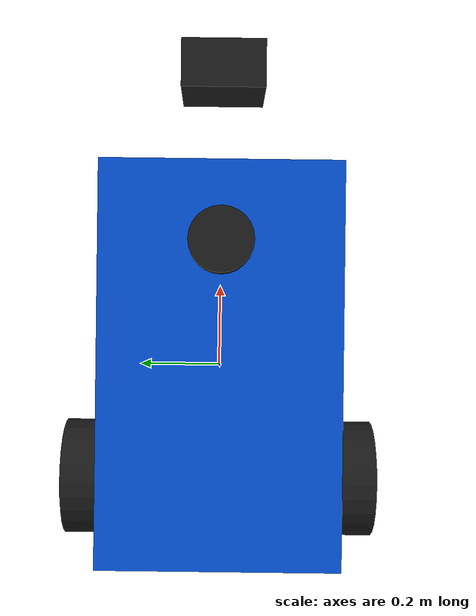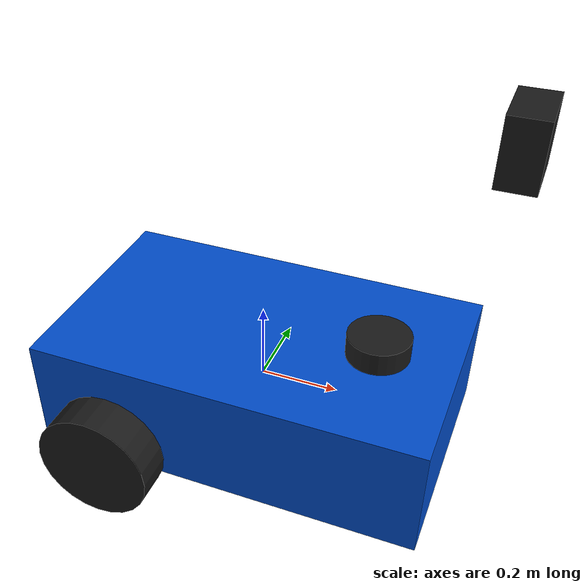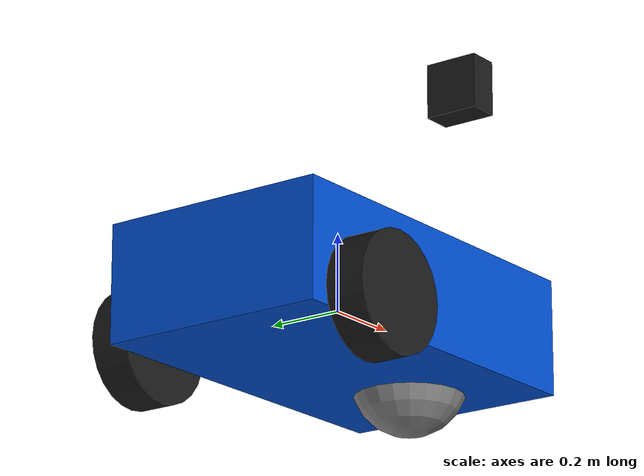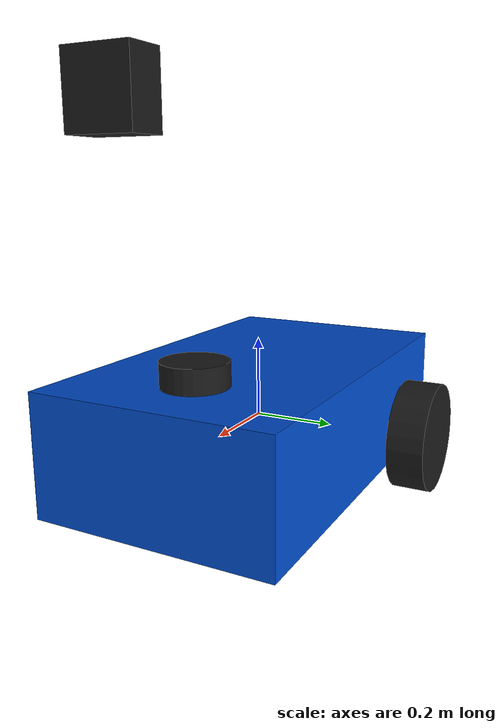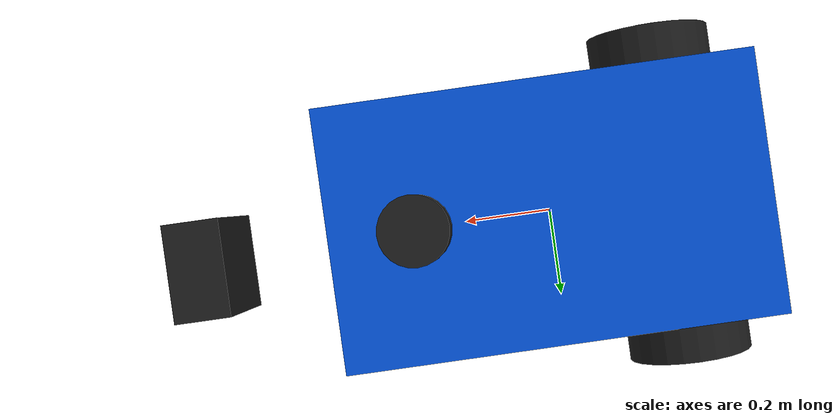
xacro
<?xml version="1.0"?>
<robot name="differential_drive_robot" xmlns:xacro="http://www.ros.org/wiki/xacro">

  <xacro:property name="body_link_x_dim" value="1"/>
  <xacro:property name="body_link_y_dim" value="0.6"/>
  <xacro:property name="body_link_z_dim" value="0.3"/>

  <xacro:property name="wheel_link_radius" value="0.15"/>
  <xacro:property name="wheel_link_length" value="0.1"/>
  <xacro:property name="wheel_link_z_location" value="-0.1"/>

  <xacro:property name="caster_link_radius" value="0.15"/>
  <xacro:property name="caster_link_z_location" value="-0.1"/>

  <xacro:property name="lidar_radius" value="0.08"/>
  <xacro:property name="lidar_length" value="0.06"/>

  <xacro:property name="camera_length" value="0.15"/>

  <xacro:property name="body_density" value="2710.0"/>
  <xacro:property name="wheel_density" value="2710.0"/>
  <xacro:property name="caster_density" value="2710.0"/>

  <xacro:property name="pi_const" value="3.14159265"/>

  <xacro:property name="body_mass" value="${body_density * body_link_x_dim * body_link_y_dim * body_link_z_dim}"/>
  <xacro:property name="wheel_mass" value="${wheel_density * pi_const * wheel_link_radius * wheel_link_radius * wheel_link_length}"/>
  <xacro:property name="caster_mass" value="${caster_density * (4.0/3.0) * pi_const * caster_link_radius * caster_link_radius * caster_link_radius}"/>

  <xacro:property name="Iz_wheel" value="${0.5*wheel_mass*wheel_link_radius*wheel_link_radius}" />
  <xacro:property name="I_wheel" value="${(1.0/12.0)*wheel_mass*(3.0*wheel_link_radius*wheel_link_radius+wheel_link_length*wheel_link_length)}" />
  <xacro:property name="I_caster" value="${(2.0/5.0)*caster_mass*caster_link_radius*caster_link_radius}" />

  <xacro:macro name="inertia_wheel">
    <inertial>
      <origin rpy="0 0 0" xyz="0 0 0"/>
      <mass value="${wheel_mass}"/>
      <inertia ixx="${I_wheel}" ixy="0.0" ixz="0.0" iyy="${I_wheel}" iyz="0" izz="${Iz_wheel}" />
    </inertial>
  </xacro:macro>

  <xacro:macro name="inertia_caster">
    <inertial>
      <origin rpy="0 0 0" xyz="0 0 0"/>
      <mass value="${caster_mass}"/>
      <inertia ixx="${I_caster}" ixy="0.0" ixz="0.0" iyy="${I_caster}" iyz="0.0" izz="${I_caster}" />
    </inertial>
  </xacro:macro>

  <link name="base_footprint"/>

  <joint name="base_footprint_joint" type="fixed">
    <parent link="base_footprint"/>
    <child link="base_link"/>
    <origin xyz="0 0 0" rpy="0 0 0"/>
  </joint>

  <link name="base_link"></link>

  <joint name="base_joint" type="fixed">
    <parent link="base_link"/>
    <child link="body_link"/>
    <origin xyz="0 0 0" rpy="0 0 0"/>
  </joint>

  <link name="body_link">
    <visual>
      <geometry>
        <box size="${body_link_x_dim} ${body_link_y_dim} ${body_link_z_dim}" />
      </geometry>
      <origin rpy="0 0 0" xyz="0 0 0"/>
      <material name="blue">
        <color rgba="0.0 0.3 0.8 1.0"/>
      </material>
    </visual>
    <collision>
      <geometry>
        <box size="${body_link_x_dim} ${body_link_y_dim} ${body_link_z_dim}" />
      </geometry>
      <origin rpy="0 0 0" xyz="0 0 0"/>
    </collision>
    <inertial>
      <origin rpy="0 0 0" xyz="0 0 0"/>
      <mass value="${body_mass}"/>
      <inertia
        ixx="${(1/12)*body_mass*(body_link_y_dim*body_link_y_dim+body_link_z_dim*body_link_z_dim)}" ixy="0" ixz="0"
        iyy="${(1/12)*body_mass*(body_link_x_dim*body_link_x_dim+body_link_z_dim*body_link_z_dim)}" iyz="0"
        izz="${(1/12)*body_mass*(body_link_y_dim*body_link_y_dim+body_link_x_dim*body_link_x_dim)}" />
    </inertial>
  </link>

  <joint name="wheel1_joint" type="continuous">
    <parent link="body_link"/>
    <child link="wheel1_link"/>
    <origin xyz="${-2*wheel_link_radius} ${-body_link_y_dim/2-wheel_link_length/2} ${wheel_link_z_location}" rpy="0 0 0"/>
    <axis xyz="0 1 0"/>
    <limit effort="1000" velocity="1000"/>
    <dynamics damping="1.0" friction="1.0"/>
  </joint>

  <link name="wheel1_link">
    <visual>
      <origin rpy="1.570795 0 0" xyz="0 0 0"/>
      <geometry>
        <cylinder length="${wheel_link_length}" radius="${wheel_link_radius}"/>
      </geometry>
      <material name="black">
        <color rgba="0.1 0.1 0.1 1.0"/>
      </material>
    </visual>
    <collision>
      <origin rpy="1.570795 0 0" xyz="0 0 0"/>
      <geometry>
        <cylinder length="${wheel_link_length}" radius="${wheel_link_radius}"/>
      </geometry>
    </collision>
    <xacro:inertia_wheel />
  </link>

  <joint name="wheel2_joint" type="continuous">
    <parent link="body_link"/>
    <child link="wheel2_link"/>
    <origin xyz="${-2*wheel_link_radius} ${body_link_y_dim/2+wheel_link_length/2} ${wheel_link_z_location}" rpy="0 0 0"/>
    <axis xyz="0 1 0"/>
    <limit effort="1000" velocity="1000"/>
    <dynamics damping="1.0" friction="1.0"/>
  </joint>

  <link name="wheel2_link">
    <visual>
      <origin rpy="1.570795 0 0" xyz="0 0 0"/>
      <geometry>
        <cylinder length="${wheel_link_length}" radius="${wheel_link_radius}"/>
      </geometry>
      <material name="black">
        <color rgba="0.1 0.1 0.1 1.0"/>
      </material>
    </visual>
    <collision>
      <origin rpy="1.570795 0 0" xyz="0 0 0"/>
      <geometry>
        <cylinder length="${wheel_link_length}" radius="${wheel_link_radius}"/>
      </geometry>
    </collision>
    <xacro:inertia_wheel />
  </link>

  <joint name="caster_joint" type="fixed">
    <parent link="body_link"/>
    <child link="caster_link"/>
    <origin xyz="${2*caster_link_radius} 0 ${caster_link_z_location}" rpy="0 0 0"/>
  </joint>

  <link name="caster_link">
    <visual>
      <origin rpy="0 0 0" xyz="0 0 0"/>
      <geometry>
        <sphere radius="${caster_link_radius}" />
      </geometry>
      <material name="grey">
        <color rgba="0.5 0.5 0.5 1.0"/>
      </material>
    </visual>
    <collision>
      <origin rpy="0 0 0" xyz="0 0 0"/>
      <geometry>
        <sphere radius="${caster_link_radius}" />
      </geometry>
    </collision>
    <xacro:inertia_caster />
  </link>

  <joint name="camera_joint" type="fixed">
    <parent link="body_link"/>
    <child link="camera_link"/>
    <origin xyz="${camera_length/3.5 + body_link_x_dim/2 } 0 0.75" rpy="0 0 0"/>
  </joint>

  <link name="camera_link">
    <visual>
      <geometry>
        <box size="${camera_length/1.75} ${camera_length} ${camera_length}"/>
      </geometry>
      <material name="black">
        <color rgba="0.1 0.1 0.1 1.0"/>
      </material>
    </visual>
    <collision>
      <geometry>
        <box size="${camera_length/1.75} ${camera_length} ${camera_length}"/>
      </geometry>
    </collision>
    <inertial>
      <mass value="0.2"/>
      <origin xyz="0 0 0" rpy="0 0 0"/>
      <inertia ixx="0.0001" ixy="0" ixz="0" iyy="0.0001" iyz="0" izz="0.0001"/>
    </inertial>
  </link>

  <joint name="camera_optical_joint" type="fixed">
    <parent link="camera_link"/>
    <child link="camera_optical_link"/>
    <origin xyz="0 0 0" rpy="${-pi_const/2} 0 ${-pi_const/2}"/>
  </joint>

  <link name="camera_optical_link"></link>

  <joint name="lidar_joint" type="fixed">
    <parent link="body_link"/>
    <child link="lidar_link"/>
    <origin xyz="0.3 0 ${body_link_z_dim/2 + lidar_length/2}" rpy="0 0 0"/>
  </joint>

  <link name="lidar_link">
    <visual>
      <geometry>
        <cylinder radius="${lidar_radius}" length="${lidar_length}"/>
      </geometry>
      <material name="black">
        <color rgba="0.1 0.1 0.1 1.0"/>
      </material>
    </visual>
    <collision>
      <geometry>
        <cylinder radius="${lidar_radius}" length="${lidar_length}"/>
      </geometry>
    </collision>
    <inertial>
      <mass value="0.5"/>
      <origin xyz="0 0 0" rpy="0 0 0"/>
      <inertia ixx="0.0001" ixy="0" ixz="0" iyy="0.0001" iyz="0" izz="0.0001"/>
    </inertial>
  </link>

  <gazebo reference="body_link">
    <visual>
      <material>
        <ambient>0.0 0.3 0.8 1.0</ambient>
        <diffuse>0.0 0.3 0.8 1.0</diffuse>
      </material>
    </visual>
    <mu1>0.2</mu1>
    <mu2>0.2</mu2>
  </gazebo>

  <gazebo reference="wheel1_link">
    <visual>
      <material>
        <ambient>0.1 0.1 0.1 1.0</ambient>
        <diffuse>0.1 0.1 0.1 1.0</diffuse>
      </material>
    </visual>
    <mu1>1.0</mu1>
    <mu2>1.0</mu2>
  </gazebo>

  <gazebo reference="wheel2_link">
    <visual>
      <material>
        <ambient>0.1 0.1 0.1 1.0</ambient>
        <diffuse>0.1 0.1 0.1 1.0</diffuse>
      </material>
    </visual>
    <mu1>1.0</mu1>
    <mu2>1.0</mu2>
  </gazebo>

  <gazebo reference="caster_link">
    <visual>
      <material>
        <ambient>0.5 0.5 0.5 1.0</ambient>
        <diffuse>0.5 0.5 0.5 1.0</diffuse>
      </material>
    </visual>
    <mu1>0.001</mu1>
    <mu2>0.001</mu2>
  </gazebo>

  <gazebo reference="lidar_link">
    <visual>
      <material>
        <ambient>0.1 0.1 0.1 1.0</ambient>
        <diffuse>0.1 0.1 0.1 1.0</diffuse>
      </material>
    </visual>
    <sensor name="lidar_sensor" type="gpu_lidar">
      <topic>/scan</topic>
      <ignition_frame_id>lidar_link</ignition_frame_id>
      <update_rate>10</update_rate>
      <ray>
        <scan>
          <horizontal>
            <samples>360</samples>
            <resolution>1</resolution>
            <min_angle>-3.14159</min_angle>
            <max_angle>3.14159</max_angle>
          </horizontal>
        </scan>
        <range>
          <min>0.15</min>
          <max>10.0</max>
          <resolution>0.01</resolution>
        </range>
      </ray>
      <always_on>1</always_on>
      <visualize>true</visualize>
    </sensor>
  </gazebo>

  <gazebo reference="camera_link">
    <sensor name="camera" type="camera">
      <pose> 0 0 0 0 0 0 </pose>
      <visualize>true</visualize>
      <update_rate>30</update_rate>
      <camera>
        <horizontal_fov>1.05</horizontal_fov>
        <image>
          <format>R8G8B8</format>
          <width>640</width>
          <height>480</height>
        </image>
        <clip>
          <near>0.05</near>
          <far>4.0</far>
        </clip>
      </camera>
      <ignition_frame_id>camera_optical_link</ignition_frame_id>
      <topic>camera/image_raw</topic>
    </sensor>
  </gazebo>

  <gazebo>
    <plugin
      filename="ignition-gazebo-diff-drive-system"
      name="ignition::gazebo::systems::DiffDrive">
      <left_joint>wheel2_joint</left_joint>
      <right_joint>wheel1_joint</right_joint>
      <wheel_separation>0.7</wheel_separation>
      <wheel_radius>0.15</wheel_radius>
      <max_wheel_torque>200</max_wheel_torque>
      <max_wheel_acceleration>10.0</max_wheel_acceleration>
      <topic>cmd_vel</topic>
      <odom_topic>odom</odom_topic>
      <tf_topic>tf</tf_topic>
      <frame_id>odom</frame_id>
      <child_frame_id>base_footprint</child_frame_id>
    </plugin>

    <plugin
      filename="ignition-gazebo-sensors-system"
      name="ignition::gazebo::systems::Sensors">
      <render_engine>ogre2</render_engine>
    </plugin>

    <plugin
      filename="ignition-gazebo-joint-state-publisher-system"
      name="ignition::gazebo::systems::JointStatePublisher">
    </plugin>
  </gazebo>

</robot>
